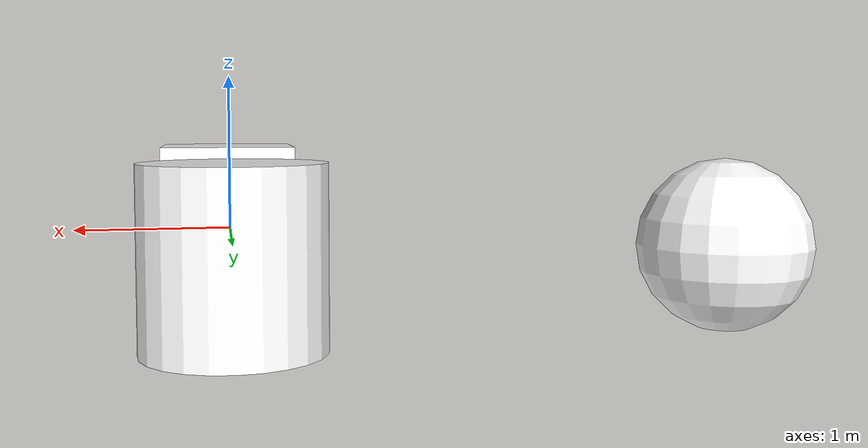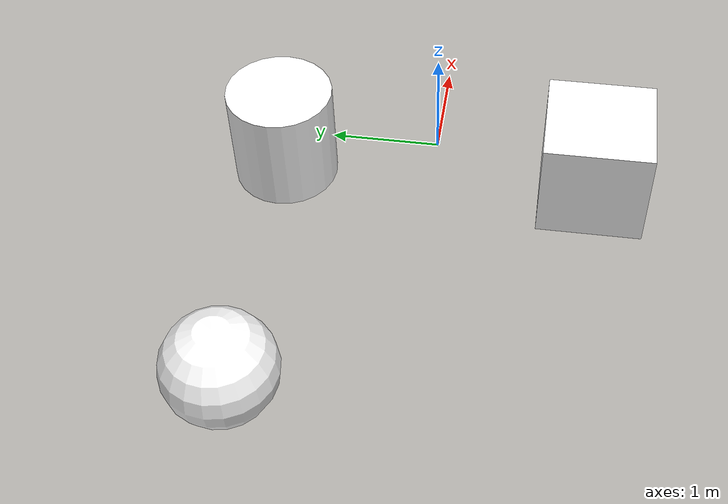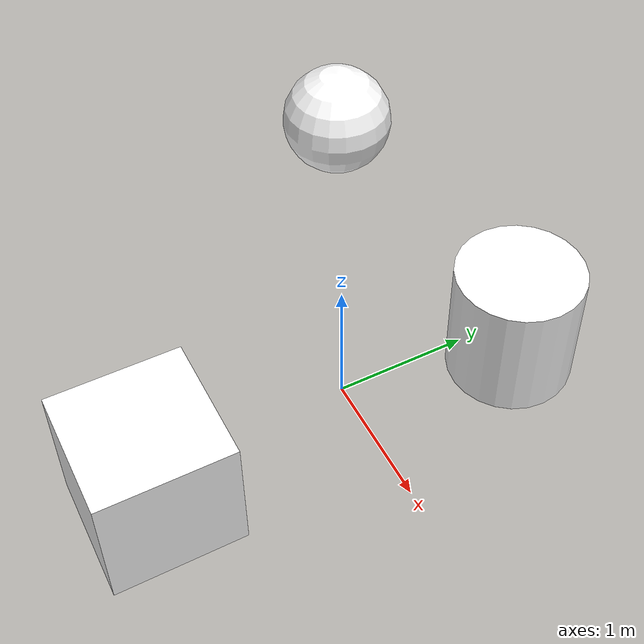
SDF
<?xml version='1.0'?>
<sdf version='1.6'>
  <model name='textured_shapes_T'>
    <link name='box'>
      <pose frame=''>0 -1.5 0 0 -0 0</pose>
      <inertial>
        <inertia>
          <ixx>1</ixx>
          <ixy>0</ixy>
          <ixz>0</ixz>
          <iyy>1</iyy>
          <iyz>0</iyz>
          <izz>1</izz>
        </inertia>
        <mass>1</mass>
      </inertial>
      <self_collide>0</self_collide>
      <kinematic>0</kinematic>
      <visual name='visual'>
        <geometry>
          <box>
            <size>1 1 1</size>
          </box>
        </geometry>
        <material>
          <script>
            <uri>model://textured_shapes/materials/scripts</uri>
            <uri>model://textured_shapes/materials/textures</uri>
            <name>TexturedShape/Squares</name>
          </script>
          <ambient>1 1 1 1</ambient>
          <diffuse>1 1 1 1</diffuse>
          <specular>0 0 0 1</specular>
          <emissive>0 0 0 1</emissive>
        </material>
        <pose frame=''>0 0 0 0 -0 0</pose>
        <cast_shadows>1</cast_shadows>
        <transparency>0</transparency>
      </visual>
      <collision name='collision'>
        <laser_retro>0</laser_retro>
        <max_contacts>10</max_contacts>
        <pose frame=''>0 0 0 0 -0 0</pose>
        <geometry>
          <box>
            <size>1 1 1</size>
          </box>
        </geometry>
        <surface>
          <friction>
            <ode>
              <mu>1</mu>
              <mu2>1</mu2>
              <fdir1>0 0 0</fdir1>
              <slip1>0</slip1>
              <slip2>0</slip2>
            </ode>
            <torsional>
              <coefficient>1</coefficient>
              <patch_radius>0</patch_radius>
              <surface_radius>0</surface_radius>
              <use_patch_radius>1</use_patch_radius>
              <ode>
                <slip>0</slip>
              </ode>
            </torsional>
          </friction>
          <bounce>
            <restitution_coefficient>0</restitution_coefficient>
            <threshold>1e+06</threshold>
          </bounce>
          <contact>
            <collide_without_contact>0</collide_without_contact>
            <collide_without_contact_bitmask>1</collide_without_contact_bitmask>
            <collide_bitmask>1</collide_bitmask>
            <ode>
              <soft_cfm>0</soft_cfm>
              <soft_erp>0.2</soft_erp>
              <kp>1e+13</kp>
              <kd>1</kd>
              <max_vel>0.01</max_vel>
              <min_depth>0</min_depth>
            </ode>
            <bullet>
              <split_impulse>1</split_impulse>
              <split_impulse_penetration_threshold>-0.01</split_impulse_penetration_threshold>
              <soft_cfm>0</soft_cfm>
              <soft_erp>0.2</soft_erp>
              <kp>1e+13</kp>
              <kd>1</kd>
            </bullet>
          </contact>
        </surface>
      </collision>
    </link>
    <link name='cylinder'>
      <pose frame=''>0 1.5 0 0 -0 0</pose>
      <inertial>
        <inertia>
          <ixx>1</ixx>
          <ixy>0</ixy>
          <ixz>0</ixz>
          <iyy>1</iyy>
          <iyz>0</iyz>
          <izz>1</izz>
        </inertia>
        <mass>1</mass>
      </inertial>
      <self_collide>0</self_collide>
      <kinematic>0</kinematic>
      <visual name='visual'>
        <geometry>
          <cylinder>
            <radius>0.5</radius>
            <length>1</length>
          </cylinder>
        </geometry>
        <material>
          <script>
            <uri>model://textured_shapes/materials/scripts</uri>
            <uri>model://textured_shapes/materials/textures</uri>
            <name>TexturedShape/Squares</name>
          </script>
          <ambient>1 1 1 1</ambient>
          <diffuse>1 1 1 1</diffuse>
          <specular>0 0 0 1</specular>
          <emissive>0 0 0 1</emissive>
        </material>
        <pose frame=''>0 0 0 0 -0 0</pose>
        <cast_shadows>1</cast_shadows>
        <transparency>0</transparency>
      </visual>
      <collision name='collision'>
        <laser_retro>0</laser_retro>
        <max_contacts>10</max_contacts>
        <pose frame=''>0 0 0 0 -0 0</pose>
        <geometry>
          <cylinder>
            <radius>0.5</radius>
            <length>1</length>
          </cylinder>
        </geometry>
        <surface>
          <friction>
            <ode>
              <mu>1</mu>
              <mu2>1</mu2>
              <fdir1>0 0 0</fdir1>
              <slip1>0</slip1>
              <slip2>0</slip2>
            </ode>
            <torsional>
              <coefficient>1</coefficient>
              <patch_radius>0</patch_radius>
              <surface_radius>0</surface_radius>
              <use_patch_radius>1</use_patch_radius>
              <ode>
                <slip>0</slip>
              </ode>
            </torsional>
          </friction>
          <bounce>
            <restitution_coefficient>0</restitution_coefficient>
            <threshold>1e+06</threshold>
          </bounce>
          <contact>
            <collide_without_contact>0</collide_without_contact>
            <collide_without_contact_bitmask>1</collide_without_contact_bitmask>
            <collide_bitmask>1</collide_bitmask>
            <ode>
              <soft_cfm>0</soft_cfm>
              <soft_erp>0.2</soft_erp>
              <kp>1e+13</kp>
              <kd>1</kd>
              <max_vel>0.01</max_vel>
              <min_depth>0</min_depth>
            </ode>
            <bullet>
              <split_impulse>1</split_impulse>
              <split_impulse_penetration_threshold>-0.01</split_impulse_penetration_threshold>
              <soft_cfm>0</soft_cfm>
              <soft_erp>0.2</soft_erp>
              <kp>1e+13</kp>
              <kd>1</kd>
            </bullet>
          </contact>
        </surface>
      </collision>
    </link>
    <link name='sphere'>
      <pose frame=''>-2.79426 1.42376 0 0 -0 0</pose>
      <inertial>
        <inertia>
          <ixx>1</ixx>
          <ixy>0</ixy>
          <ixz>0</ixz>
          <iyy>1</iyy>
          <iyz>0</iyz>
          <izz>1</izz>
        </inertia>
        <mass>1</mass>
      </inertial>
      <self_collide>0</self_collide>
      <kinematic>0</kinematic>
      <visual name='visual'>
        <geometry>
          <sphere>
            <radius>0.5</radius>
          </sphere>
        </geometry>
        <material>
          <script>
            <uri>model://textured_shapes/materials/scripts</uri>
            <uri>model://textured_shapes/materials/textures</uri>
            <name>TexturedShape/Squares</name>
          </script>
          <ambient>1 1 1 1</ambient>
          <diffuse>1 1 1 1</diffuse>
          <specular>0 0 0 1</specular>
          <emissive>0 0 0 1</emissive>
        </material>
        <pose frame=''>0 0 0 0 -0 0</pose>
        <cast_shadows>1</cast_shadows>
        <transparency>0</transparency>
      </visual>
      <collision name='collision'>
        <laser_retro>0</laser_retro>
        <max_contacts>10</max_contacts>
        <pose frame=''>0 0 0 0 -0 0</pose>
        <geometry>
          <sphere>
            <radius>0.5</radius>
          </sphere>
        </geometry>
        <surface>
          <friction>
            <ode>
              <mu>1</mu>
              <mu2>1</mu2>
              <fdir1>0 0 0</fdir1>
              <slip1>0</slip1>
              <slip2>0</slip2>
            </ode>
            <torsional>
              <coefficient>1</coefficient>
              <patch_radius>0</patch_radius>
              <surface_radius>0</surface_radius>
              <use_patch_radius>1</use_patch_radius>
              <ode>
                <slip>0</slip>
              </ode>
            </torsional>
          </friction>
          <bounce>
            <restitution_coefficient>0</restitution_coefficient>
            <threshold>1e+06</threshold>
          </bounce>
          <contact>
            <collide_without_contact>0</collide_without_contact>
            <collide_without_contact_bitmask>1</collide_without_contact_bitmask>
            <collide_bitmask>1</collide_bitmask>
            <ode>
              <soft_cfm>0</soft_cfm>
              <soft_erp>0.2</soft_erp>
              <kp>1e+13</kp>
              <kd>1</kd>
              <max_vel>0.01</max_vel>
              <min_depth>0</min_depth>
            </ode>
            <bullet>
              <split_impulse>1</split_impulse>
              <split_impulse_penetration_threshold>-0.01</split_impulse_penetration_threshold>
              <soft_cfm>0</soft_cfm>
              <soft_erp>0.2</soft_erp>
              <kp>1e+13</kp>
              <kd>1</kd>
            </bullet>
          </contact>
        </surface>
      </collision>
    </link>
    <static>0</static>
    <allow_auto_disable>1</allow_auto_disable>
  </model>
</sdf>
